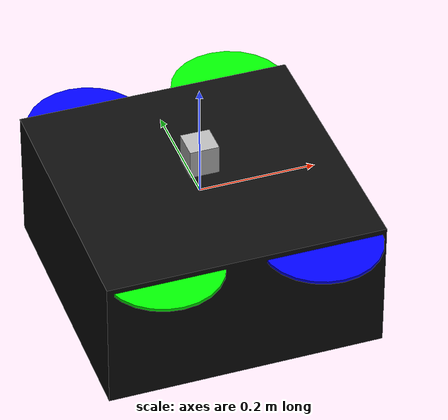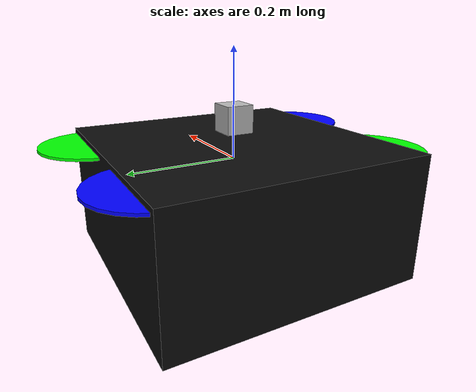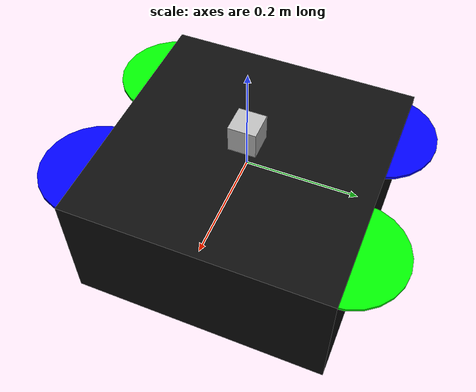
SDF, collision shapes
<?xml version='1.0'?>
<sdf version="1.9">
  <model name="iris_with_ardupilot">
    <include>
      <uri>model://iris_with_standoffs</uri>
    </include>
  <!-- 定义 base_link -->
    <link name="base_link">
      <pose>0 0 0 0 0 0</pose>
      <inertial>
        <mass>1.0</mass>
        <inertia>
          <ixx>0.1</ixx>
          <iyy>0.1</iyy>
          <izz>0.1</izz>
        </inertia>
      </inertial>
    </link>
    <!--
      visual markers for debugging
      - blade root    - teal
      - blade tip     - orange
      - blade cp      - yellow
      - blade forward - red
      - blade upward  - blue
    -->

    <!-- plugins -->
    <plugin filename="gz-sim-joint-state-publisher-system"
      name="gz::sim::systems::JointStatePublisher">
    </plugin>

    <plugin
      filename="gz-sim-odometry-publisher-system"
      name="gz::sim::systems::OdometryPublisher">
      <odom_frame>odom</odom_frame>
      <robot_base_frame>base_link</robot_base_frame>
      <dimensions>3</dimensions>
    </plugin>

    <plugin filename="gz-sim-lift-drag-system"
        name="gz::sim::systems::LiftDrag">
      <a0>0.3</a0>
      <alpha_stall>1.4</alpha_stall>
      <cla>4.2500</cla>
      <cda>0.10</cda>
      <cma>0.0</cma>
      <cla_stall>-0.025</cla_stall>
      <cda_stall>0.0</cda_stall>
      <cma_stall>0.0</cma_stall>
      <area>0.002</area>
      <air_density>1.2041</air_density>
      <cp>0.084 0 0</cp>
      <forward>0 1 0</forward>
      <upward>0 0 1</upward>
      <link_name>iris_with_standoffs::rotor_0</link_name>
    </plugin>
    <plugin filename="gz-sim-lift-drag-system"
        name="gz::sim::systems::LiftDrag">
      <a0>0.3</a0>
      <alpha_stall>1.4</alpha_stall>
      <cla>4.2500</cla>
      <cda>0.10</cda>
      <cma>0.0</cma>
      <cla_stall>-0.025</cla_stall>
      <cda_stall>0.0</cda_stall>
      <cma_stall>0.0</cma_stall>
      <area>0.002</area>
      <air_density>1.2041</air_density>
      <cp>-0.084 0 0</cp>
      <forward>0 -1 0</forward>
      <upward>0 0 1</upward>
      <link_name>iris_with_standoffs::rotor_0</link_name>
    </plugin>

    <plugin filename="gz-sim-lift-drag-system"
        name="gz::sim::systems::LiftDrag">
      <a0>0.3</a0>
      <alpha_stall>1.4</alpha_stall>
      <cla>4.2500</cla>
      <cda>0.10</cda>
      <cma>0.0</cma>
      <cla_stall>-0.025</cla_stall>
      <cda_stall>0.0</cda_stall>
      <cma_stall>0.0</cma_stall>
      <area>0.002</area>
      <air_density>1.2041</air_density>
      <cp>0.084 0 0</cp>
      <forward>0 1 0</forward>
      <upward>0 0 1</upward>
      <link_name>iris_with_standoffs::rotor_1</link_name>
    </plugin>
    <plugin filename="gz-sim-lift-drag-system"
        name="gz::sim::systems::LiftDrag">
      <a0>0.3</a0>
      <alpha_stall>1.4</alpha_stall>
      <cla>4.2500</cla>
      <cda>0.10</cda>
      <cma>0.0</cma>
      <cla_stall>-0.025</cla_stall>
      <cda_stall>0.0</cda_stall>
      <cma_stall>0.0</cma_stall>
      <area>0.002</area>
      <air_density>1.2041</air_density>
      <cp>-0.084 0 0</cp>
      <forward>0 -1 0</forward>
      <upward>0 0 1</upward>
      <link_name>iris_with_standoffs::rotor_1</link_name>
    </plugin>

    <plugin filename="gz-sim-lift-drag-system"
        name="gz::sim::systems::LiftDrag">
      <a0>0.3</a0>
      <alpha_stall>1.4</alpha_stall>
      <cla>4.2500</cla>
      <cda>0.10</cda>
      <cma>0.0</cma>
      <cla_stall>-0.025</cla_stall>
      <cda_stall>0.0</cda_stall>
      <cma_stall>0.0</cma_stall>
      <area>0.002</area>
      <air_density>1.2041</air_density>
      <cp>0.084 0 0</cp>
      <forward>0 -1 0</forward>
      <upward>0 0 1</upward>
      <link_name>iris_with_standoffs::rotor_2</link_name>
    </plugin>
    <plugin filename="gz-sim-lift-drag-system"
        name="gz::sim::systems::LiftDrag">
      <a0>0.3</a0>
      <alpha_stall>1.4</alpha_stall>
      <cla>4.2500</cla>
      <cda>0.10</cda>
      <cma>0.0</cma>
      <cla_stall>-0.025</cla_stall>
      <cda_stall>0.0</cda_stall>
      <cma_stall>0.0</cma_stall>
      <area>0.002</area>
      <air_density>1.2041</air_density>
      <cp>-0.084 0 0</cp>
      <forward>0 1 0</forward>
      <upward>0 0 1</upward>
      <link_name>iris_with_standoffs::rotor_2</link_name>
    </plugin>

    <plugin filename="gz-sim-lift-drag-system"
        name="gz::sim::systems::LiftDrag">
      <a0>0.3</a0>
      <alpha_stall>1.4</alpha_stall>
      <cla>4.2500</cla>
      <cda>0.10</cda>
      <cma>0.0</cma>
      <cla_stall>-0.025</cla_stall>
      <cda_stall>0.0</cda_stall>
      <cma_stall>0.0</cma_stall>
      <area>0.002</area>
      <air_density>1.2041</air_density>
      <cp>0.084 0 0</cp>
      <forward>0 -1 0</forward>
      <upward>0 0 1</upward>
      <link_name>iris_with_standoffs::rotor_3</link_name>
    </plugin>
    <plugin filename="gz-sim-lift-drag-system"
        name="gz::sim::systems::LiftDrag">
      <a0>0.3</a0>
      <alpha_stall>1.4</alpha_stall>
      <cla>4.2500</cla>
      <cda>0.10</cda>
      <cma>0.0</cma>
      <cla_stall>-0.025</cla_stall>
      <cda_stall>0.0</cda_stall>
      <cma_stall>0.0</cma_stall>
      <area>0.002</area>
      <air_density>1.2041</air_density>
      <cp>-0.084 0 0</cp>
      <forward>0 1 0</forward>
      <upward>0 0 1</upward>
      <link_name>iris_with_standoffs::rotor_3</link_name>
    </plugin>

    <plugin filename="gz-sim-apply-joint-force-system"
      name="gz::sim::systems::ApplyJointForce">
      <joint_name>iris_with_standoffs::rotor_0_joint</joint_name>
    </plugin>
    <plugin filename="gz-sim-apply-joint-force-system"
      name="gz::sim::systems::ApplyJointForce">
      <joint_name>iris_with_standoffs::rotor_1_joint</joint_name>
    </plugin>
    <plugin filename="gz-sim-apply-joint-force-system"
      name="gz::sim::systems::ApplyJointForce">
      <joint_name>iris_with_standoffs::rotor_2_joint</joint_name>
    </plugin>
    <plugin filename="gz-sim-apply-joint-force-system"
      name="gz::sim::systems::ApplyJointForce">
      <joint_name>iris_with_standoffs::rotor_3_joint</joint_name>
    </plugin>

    <plugin name="ArduPilotPlugin"
      filename="ArduPilotPlugin">
      <!-- Port settings -->
      <fdm_addr>127.0.0.1</fdm_addr>
      <fdm_port_in>9002</fdm_port_in>
      <connectionTimeoutMaxCount>5</connectionTimeoutMaxCount>
      <lock_step>1</lock_step>
      <have_32_channels>0</have_32_channels>

      <!-- Frame conventions
        Require by ArduPilot: change model and gazebo from XYZ to XY-Z coordinates
      -->
      <modelXYZToAirplaneXForwardZDown degrees="true">0 0 0 180 0 0</modelXYZToAirplaneXForwardZDown>
      <gazeboXYZToNED degrees="true">0 0 0 180 0 90</gazeboXYZToNED>

      <!-- Sensors -->
      <imuName>iris_with_standoffs::imu_link::imu_sensor</imuName>

      <!--
          incoming control command [0, 1]
          so offset it by 0 to get [0, 1]
          and divide max target by 1.
          offset = 0
          multiplier = 838 max rpm / 1 = 838
        -->
      <control channel="0">
        <jointName>iris_with_standoffs::rotor_0_joint</jointName>
        <useForce>1</useForce>
        <multiplier>838</multiplier>
        <offset>0</offset>
        <servo_min>1100</servo_min>
        <servo_max>1900</servo_max>
        <type>VELOCITY</type>
        <p_gain>0.20</p_gain>
        <i_gain>0</i_gain>
        <d_gain>0</d_gain>
        <i_max>0</i_max>
        <i_min>0</i_min>
        <cmd_max>2.5</cmd_max>
        <cmd_min>-2.5</cmd_min>
        <controlVelocitySlowdownSim>1</controlVelocitySlowdownSim>
      </control>

      <control channel="1">
        <jointName>iris_with_standoffs::rotor_1_joint</jointName>
        <useForce>1</useForce>
        <multiplier>838</multiplier>
        <offset>0</offset>
        <servo_min>1100</servo_min>
        <servo_max>1900</servo_max>
        <type>VELOCITY</type>
        <p_gain>0.20</p_gain>
        <i_gain>0</i_gain>
        <d_gain>0</d_gain>
        <i_max>0</i_max>
        <i_min>0</i_min>
        <cmd_max>2.5</cmd_max>
        <cmd_min>-2.5</cmd_min>
        <controlVelocitySlowdownSim>1</controlVelocitySlowdownSim>
      </control>

      <control channel="2">
        <jointName>iris_with_standoffs::rotor_2_joint</jointName>
        <useForce>1</useForce>
        <multiplier>-838</multiplier>
        <offset>0</offset>
        <servo_min>1100</servo_min>
        <servo_max>1900</servo_max>
        <type>VELOCITY</type>
        <p_gain>0.20</p_gain>
        <i_gain>0</i_gain>
        <d_gain>0</d_gain>
        <i_max>0</i_max>
        <i_min>0</i_min>
        <cmd_max>2.5</cmd_max>
        <cmd_min>-2.5</cmd_min>
        <controlVelocitySlowdownSim>1</controlVelocitySlowdownSim>
      </control>

      <control channel="3">
        <jointName>iris_with_standoffs::rotor_3_joint</jointName>
        <useForce>1</useForce>
        <multiplier>-838</multiplier>
        <offset>0</offset>
        <servo_min>1100</servo_min>
        <servo_max>1900</servo_max>
        <type>VELOCITY</type>
        <p_gain>0.20</p_gain>
        <i_gain>0</i_gain>
        <d_gain>0</d_gain>
        <i_max>0</i_max>
        <i_min>0</i_min>
        <cmd_max>2.5</cmd_max>
        <cmd_min>-2.5</cmd_min>
        <controlVelocitySlowdownSim>1</controlVelocitySlowdownSim>
      </control>

    </plugin>

    <link name="base_scan">
      <pose>0 0 0.075077 0 0 0</pose>
      <inertial>
        <mass>0.1</mass>
        <inertia>
          <ixx>0.000166667</ixx>
          <iyy>0.000166667</iyy>
          <izz>0.000166667</izz>
        </inertia>
      </inertial>

      <collision name="collision">
        <geometry>
          <box>
            <size>0.05 0.05 0.05</size>
          </box>
        </geometry>
      </collision>

      <visual name="visual">
        <geometry>
          <box>
            <size>0.05 0.05 0.05</size>
          </box>
        </geometry>
      </visual>

      <sensor name='gpu_lidar' type='gpu_lidar'>
        <gz_frame_id>base_scan</gz_frame_id>
        <pose>0 0 0 0 0 0</pose>
        <topic>lidar</topic>
        <update_rate>10</update_rate>
        <lidar>
          <scan>
            <horizontal>
              <samples>640</samples>
              <resolution>1</resolution>
              <min_angle>-3.14159265</min_angle>
              <max_angle>3.14159265</max_angle>
            </horizontal>
            <vertical>
              <samples>1</samples>
              <resolution>1</resolution>
              <min_angle>0.0</min_angle>
              <max_angle>0.0</max_angle>
            </vertical>
          </scan>
          <range>
            <min>0.08</min>
            <max>10.0</max>
            <resolution>0.01</resolution>
          </range>
        </lidar>
        <visualize>true</visualize>
      </sensor>
    </link>

    <joint name="lidar_joint" type="revolute">
      <parent>base_link</parent>
      <child>base_scan</child>
      <axis>
        <xyz>0 0 1</xyz>
        <limit>
          <lower>0</lower>
          <upper>0</upper>
        </limit>
        <dynamics>
          <damping>1</damping>
        </dynamics>
      </axis>
    </joint>

  </model>
</sdf>

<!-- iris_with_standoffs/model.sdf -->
<sdf version='1.9'>
  <model name='iris_with_standoffs'>
    <pose>0 0 0 0 0 0</pose>
    <link name='base_link'>
      <velocity_decay>
        <linear>0.0</linear>
        <angular>0.0</angular>
      </velocity_decay>
      <inertial>
        <pose>0 0 0 0 0 0</pose>
        <mass>1.5</mass>
        <inertia>
          <ixx>0.008</ixx>
          <ixy>0</ixy>
          <ixz>0</ixz>
          <iyy>0.015</iyy>
          <iyz>0</iyz>
          <izz>0.017</izz>
        </inertia>
      </inertial>
      <collision name='base_collision'>
        <pose>0 0 -0.08 0 0 0</pose>
        <geometry>
          <box>
            <size>0.47 0.47 0.23</size>
          </box>
        </geometry>
        <surface>
          <contact>
            <ode>
              <max_vel>100.0</max_vel>
              <min_depth>0.001</min_depth>
            </ode>
          </contact>
          <friction>
            <ode>
              <mu>100000.0</mu>
              <mu2>100000.0</mu2>
            </ode>
          </friction>
        </surface>
      </collision>
      <visual name='base_visual'>
        <geometry>
          <mesh>
            <uri>meshes/iris.dae</uri>
          </mesh>
        </geometry>
        <material>
          <ambient>0.05 0.05 0.05</ambient>
          <diffuse>0.05 0.05 0.05</diffuse>
          <specular>1 1 1 1</specular>
          <pbr>
            <metal>
              <metalness>0.5</metalness>
              <roughness>0.5</roughness>
            </metal>
          </pbr>
        </material>
      </visual>

      <visual name='front_left_leg_visual'>
        <pose>0.123 0.22 -0.11 0 0 0</pose>
        <geometry>
          <cylinder>
            <radius>0.005</radius>
            <length>0.17</length>
          </cylinder>
        </geometry>
        <material>
          <ambient>0.05 0.05 0.05</ambient>
          <diffuse>0.05 0.05 0.05</diffuse>
          <specular>0.01 0.01 0.01 1.0</specular>
          <pbr>
            <metal>
              <metalness>0.5</metalness>
              <roughness>0.5</roughness>
            </metal>
          </pbr>
        </material>
      </visual>
      <visual name='front_right_leg_visual'>
        <pose>0.123 -0.22 -0.11 0 0 0</pose>
        <geometry>
          <cylinder>
            <radius>0.005</radius>
            <length>0.17</length>
          </cylinder>
        </geometry>
        <material>
          <ambient>0.05 0.05 0.05</ambient>
          <diffuse>0.05 0.05 0.05</diffuse>
          <specular>0.01 0.01 0.01 1.0</specular>
          <pbr>
            <metal>
              <metalness>0.5</metalness>
              <roughness>0.5</roughness>
            </metal>
          </pbr>
        </material>
      </visual>
      <visual name='rear_left_leg_visual'>
        <pose>-0.140 0.21 -0.11 0 0 0</pose>
        <geometry>
          <cylinder>
            <radius>0.005</radius>
            <length>0.17</length>
          </cylinder>
        </geometry>
        <material>
          <ambient>0.05 0.05 0.05</ambient>
          <diffuse>0.05 0.05 0.05</diffuse>
          <specular>0.01 0.01 0.01 1.0</specular>
          <pbr>
            <metal>
              <metalness>0.5</metalness>
              <roughness>0.5</roughness>
            </metal>
          </pbr>
        </material>
      </visual>
      <visual name='rear_right_leg_visual'>
        <pose>-0.140 -0.21 -0.11 0 0 0</pose>
        <geometry>
          <cylinder>
            <radius>0.005</radius>
            <length>0.17</length>
          </cylinder>
        </geometry>
        <material>
          <ambient>0.05 0.05 0.05</ambient>
          <diffuse>0.05 0.05 0.05</diffuse>
          <specular>0.01 0.01 0.01 1.0</specular>
          <pbr>
            <metal>
              <metalness>0.5</metalness>
              <roughness>0.5</roughness>
            </metal>
          </pbr>
        </material>
      </visual>

      <!-- Additional sensors -->
      <sensor name="air_pressure_sensor" type="air_pressure">
        <always_on>1</always_on>
        <update_rate>30</update_rate>
      </sensor>
      <sensor name="air_speed_sensor" type="air_speed">
        <always_on>1</always_on>
        <update_rate>30</update_rate>
      </sensor>
      <sensor name="altimeter_sensor" type="altimeter">
        <always_on>1</always_on>
        <update_rate>30</update_rate>
      </sensor>
      <sensor name="magnetometer_sensor" type="magnetometer">
        <always_on>1</always_on>
        <update_rate>30</update_rate>
      </sensor>

    </link>

    <link name="camera_link">
      <pose>0.0 0.0 -0.05 0 1.5705 0</pose>
      <inertial>
        <mass>0.1</mass>
        <inertia>
          <ixx>0.0002</ixx>
          <iyy>0.0002</iyy>
          <izz>0.0002</izz>
        </inertia>
      </inertial>
      <sensor name="camera" type="camera">
        <camera>
          <horizontal_fov>1.047</horizontal_fov>
          <image>
            <width>640</width>
            <height>480</height>
          </image>
          <clip>
            <near>0.1</near>
            <far>100</far>
          </clip>
        </camera>
        <always_on>1</always_on>
        <update_rate>10</update_rate>
        <visualize>true</visualize>
        <topic>gui/camera</topic>
      </sensor>
    </link>
    <joint name='camera_joint' type='revolute'>
      <child>camera_link</child>
      <parent>base_link</parent>
      <axis>
        <xyz>0 0 1</xyz>
        <limit>
          <lower>0</lower>
          <upper>0</upper>
          <effort>0</effort>
          <velocity>0</velocity>
        </limit>
        <dynamics>
          <damping>1.0</damping>
        </dynamics>
      </axis>
    </joint>
    <link name='imu_link'>
      <inertial>
        <pose>0 0 0 0 0 0</pose>
        <mass>0.15</mass>
        <inertia>
          <ixx>0.00001</ixx>
          <ixy>0</ixy>
          <ixz>0</ixz>
          <iyy>0.00002</iyy>
          <iyz>0</iyz>
          <izz>0.00002</izz>
        </inertia>
      </inertial>
      <sensor name="imu_sensor" type="imu">
        <pose degrees="true">0 0 0 180 0 0</pose>
        <always_on>1</always_on>
        <update_rate>1000.0</update_rate>
      </sensor>
    </link>
    <joint name='imu_joint' type='revolute'>
      <child>imu_link</child>
      <parent>base_link</parent>
      <axis>
        <xyz>0 0 1</xyz>
        <limit>
          <lower>0</lower>
          <upper>0</upper>
          <effort>0</effort>
          <velocity>0</velocity>
        </limit>
        <dynamics>
          <damping>1.0</damping>
        </dynamics>
      </axis>
    </joint>
    <link name='rotor_0'>
      <pose>0.13 -0.22 0.023 0 0 0</pose>
      <inertial>
        <pose>0 0 0 0 0 0</pose>
        <mass>0.025</mass>
        <inertia>
          <ixx>9.75e-06</ixx>
          <ixy>0</ixy>
          <ixz>0</ixz>
          <iyy>0.000166704</iyy>
          <iyz>0</iyz>
          <izz>0.000167604</izz>
        </inertia>
      </inertial>
      <collision name='rotor_0_collision'>
        <pose>0 0 0 0 0 0</pose>
        <geometry>
          <cylinder>
            <length>0.005</length>
            <radius>0.1</radius>
          </cylinder>
        </geometry>
        <surface>
          <contact>
            <ode/>
          </contact>
          <friction>
            <ode/>
          </friction>
        </surface>
      </collision>
      <visual name='rotor_0_visual'>
        <pose>0 0 0 0 0 0</pose>
        <geometry>
          <mesh>
            <scale>1 1 1</scale>
            <uri>meshes/iris_prop_ccw.dae</uri>
          </mesh>
        </geometry>
        <material>
          <ambient>0 0 1</ambient>
          <diffuse>0 0 1</diffuse>
          <specular>1 1 1 1</specular>
          <pbr>
            <metal>
              <metalness>0.5</metalness>
              <roughness>0.5</roughness>
            </metal>
          </pbr>
        </material>
      </visual>
      <gravity>1</gravity>
      <velocity_decay/>
      <self_collide>0</self_collide>
    </link>
    <joint name='rotor_0_joint' type='revolute'>
      <child>rotor_0</child>
      <parent>base_link</parent>
      <axis>
        <xyz>0 0 1</xyz>
        <limit>
          <lower>-1e+16</lower>
          <upper>1e+16</upper>
        </limit>
        <dynamics>
          <damping>0.004</damping>
        </dynamics>
      </axis>
      <physics>
        <ode>
          <implicit_spring_damper>1</implicit_spring_damper>
        </ode>
      </physics>
    </joint>
    <link name='rotor_1'>
      <pose>-0.13 0.2 0.023 0 0 0</pose>
      <inertial>
        <pose>0 0 0 0 0 0</pose>
        <mass>0.025</mass>
        <inertia>
          <ixx>9.75e-06</ixx>
          <ixy>0</ixy>
          <ixz>0</ixz>
          <iyy>0.000166704</iyy>
          <iyz>0</iyz>
          <izz>0.000167604</izz>
        </inertia>
      </inertial>
      <collision name='rotor_1_collision'>
        <pose>0 0 0 0 0 0</pose>
        <geometry>
          <cylinder>
            <length>0.005</length>
            <radius>0.1</radius>
          </cylinder>
        </geometry>
        <surface>
          <contact>
            <ode/>
          </contact>
          <friction>
            <ode/>
          </friction>
        </surface>
      </collision>
      <visual name='rotor_1_visual'>
        <pose>0 0 0 0 0 0</pose>
        <geometry>
          <mesh>
            <scale>1 1 1</scale>
            <uri>meshes/iris_prop_ccw.dae</uri>
          </mesh>
        </geometry>
        <material>
          <ambient>0 0 1 1</ambient>
          <diffuse>0 0 1 1</diffuse>
          <specular>1 1 1 1</specular>
          <pbr>
            <metal>
              <metalness>0.5</metalness>
              <roughness>0.5</roughness>
            </metal>
          </pbr>
        </material>
      </visual>
      <gravity>1</gravity>
      <velocity_decay/>
      <self_collide>0</self_collide>
    </link>
    <joint name='rotor_1_joint' type='revolute'>
      <child>rotor_1</child>
      <parent>base_link</parent>
      <axis>
        <xyz>0 0 1</xyz>
        <limit>
          <lower>-1e+16</lower>
          <upper>1e+16</upper>
        </limit>
        <dynamics>
          <damping>0.004</damping>
        </dynamics>
      </axis>
      <physics>
        <ode>
          <implicit_spring_damper>1</implicit_spring_damper>
        </ode>
      </physics>
    </joint>
    <link name='rotor_2'>
      <pose>0.13 0.22 0.023 0 0 0</pose>
      <inertial>
        <pose>0 0 0 0 0 0</pose>
        <mass>0.025</mass>
        <inertia>
          <ixx>9.75e-06</ixx>
          <ixy>0</ixy>
          <ixz>0</ixz>
          <iyy>0.000166704</iyy>
          <iyz>0</iyz>
          <izz>0.000167604</izz>
        </inertia>
      </inertial>
      <collision name='rotor_2_collision'>
        <pose>0 0 0 0 0 0</pose>
        <geometry>
          <cylinder>
            <length>0.005</length>
            <radius>0.1</radius>
          </cylinder>
        </geometry>
        <surface>
          <contact>
            <ode/>
          </contact>
          <friction>
            <ode/>
          </friction>
        </surface>
      </collision>
      <visual name='rotor_2_visual'>
        <pose>0 0 0 0 0 0</pose>
        <geometry>
          <mesh>
            <scale>1 1 1</scale>
            <uri>meshes/iris_prop_cw.dae</uri>
          </mesh>
        </geometry>
        <material>
          <ambient>0 1 0</ambient>
          <diffuse>0 1 0</diffuse>
          <specular>1 1 1 1</specular>
          <pbr>
            <metal>
              <metalness>0.5</metalness>
              <roughness>0.5</roughness>
            </metal>
          </pbr>
        </material>
      </visual>
      <gravity>1</gravity>
      <velocity_decay/>
      <self_collide>0</self_collide>
    </link>
    <joint name='rotor_2_joint' type='revolute'>
      <child>rotor_2</child>
      <parent>base_link</parent>
      <axis>
        <xyz>0 0 1</xyz>
        <limit>
          <lower>-1e+16</lower>
          <upper>1e+16</upper>
        </limit>
        <dynamics>
          <damping>0.004</damping>
        </dynamics>
      </axis>
      <physics>
        <ode>
          <implicit_spring_damper>1</implicit_spring_damper>
        </ode>
      </physics>
    </joint>
    <link name='rotor_3'>
      <pose>-0.13 -0.2 0.023 0 0 0</pose>
      <inertial>
        <pose>0 0 0 0 0 0</pose>
        <mass>0.025</mass>
        <inertia>
          <ixx>9.75e-06</ixx>
          <ixy>0</ixy>
          <ixz>0</ixz>
          <iyy>0.000166704</iyy>
          <iyz>0</iyz>
          <izz>0.000167604</izz>
        </inertia>
      </inertial>
      <collision name='rotor_3_collision'>
        <pose>0 0 0 0 0 0</pose>
        <geometry>
          <cylinder>
            <length>0.005</length>
            <radius>0.1</radius>
          </cylinder>
        </geometry>
        <surface>
          <contact>
            <ode/>
          </contact>
          <friction>
            <ode/>
          </friction>
        </surface>
      </collision>
      <visual name='rotor_3_visual'>
        <pose>0 0 0 0 0 0</pose>
        <geometry>
          <mesh>
            <scale>1 1 1</scale>
            <uri>meshes/iris_prop_cw.dae</uri>
          </mesh>
        </geometry>
        <material>
          <ambient>0 1 0</ambient>
          <diffuse>0 1 0</diffuse>
          <specular>1 1 1 1</specular>
          <pbr>
            <metal>
              <metalness>0.5</metalness>
              <roughness>0.5</roughness>
            </metal>
          </pbr>
        </material>
      </visual>
      <gravity>1</gravity>
      <velocity_decay/>
      <self_collide>0</self_collide>
    </link>
    <joint name='rotor_3_joint' type='revolute'>
      <child>rotor_3</child>
      <parent>base_link</parent>
      <axis>
        <xyz>0 0 1</xyz>
        <limit>
          <lower>-1e+16</lower>
          <upper>1e+16</upper>
        </limit>
        <dynamics>
          <damping>0.004</damping>
        </dynamics>
      </axis>
      <physics>
        <ode>
          <implicit_spring_damper>1</implicit_spring_damper>
        </ode>
      </physics>
    </joint>
  </model>
</sdf>
